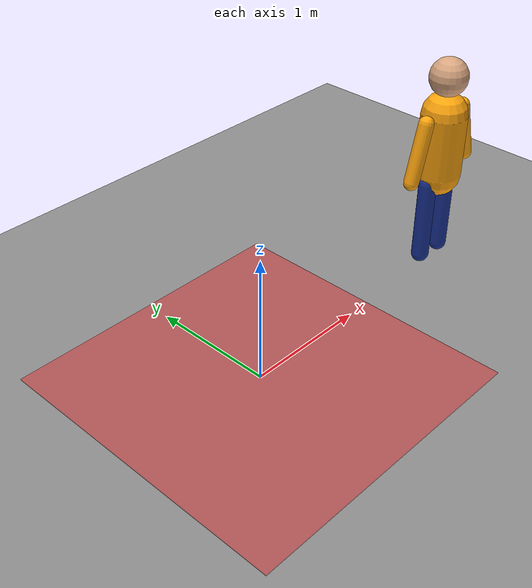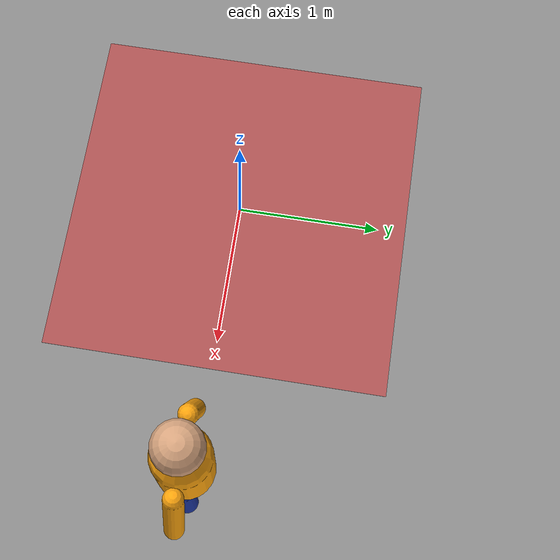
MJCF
<mujoco model="oasis_camera_demo">
  <compiler angle="degree"/>
  <option timestep="0.01" gravity="0 0 -9.81"/>
  <visual>
    <global offwidth="640" offheight="480"/>
    <headlight ambient="0.4 0.4 0.4" diffuse="0.6 0.6 0.6"/>
  </visual>
  <asset>
    <texture name="floor_texture" type="2d" builtin="checker"
             rgb1="0.65 0.65 0.65" rgb2="0.45 0.45 0.45" width="256" height="256"/>
    <material name="floor_material" texture="floor_texture" texrepeat="4 4"/>
  </asset>
  <worldbody>
    <light pos="0 -2 6" dir="0 0 -1"/>
    <geom name="floor" type="plane" size="5 5 0.1" material="floor_material"/>
    <!-- Red marking only: this does not enforce a safety rule. -->
    <geom name="keep_out_marking" type="box" pos="0 0 0.006"
          size="1.2 1.2 0.005" rgba="0.9 0.1 0.1 0.45" contype="0" conaffinity="0"/>
    <camera name="cctv_1" pos="0 -6 5" xyaxes="1 0 0 0 0.64 0.768" fovy="55"/>
    <!-- A deliberately simple mannequin, not a realistic human asset. -->
    <body name="worker" mocap="true" pos="2 0 0">
      <geom name="torso" type="capsule" fromto="0 0 0.85 0 0 1.35" size="0.18" rgba="1 0.65 0.05 1"/>
      <geom name="head" type="sphere" pos="0 0 1.65" size="0.15" rgba="0.85 0.65 0.5 1"/>
      <geom name="left_leg" type="capsule" fromto="-0.12 0 0.15 -0.12 0 0.8" size="0.07" rgba="0.1 0.2 0.6 1"/>
      <geom name="right_leg" type="capsule" fromto="0.12 0 0.15 0.12 0 0.8" size="0.07" rgba="0.1 0.2 0.6 1"/>
      <geom name="left_arm" type="capsule" fromto="-0.23 0 1.35 -0.35 0 0.9" size="0.06" rgba="1 0.65 0.05 1"/>
      <geom name="right_arm" type="capsule" fromto="0.23 0 1.35 0.35 0 0.9" size="0.06" rgba="1 0.65 0.05 1"/>
    </body>
  </worldbody>
</mujoco>
